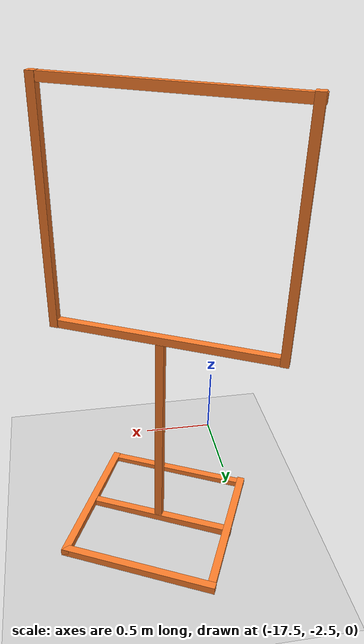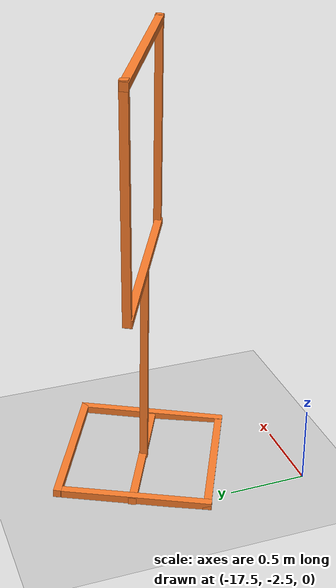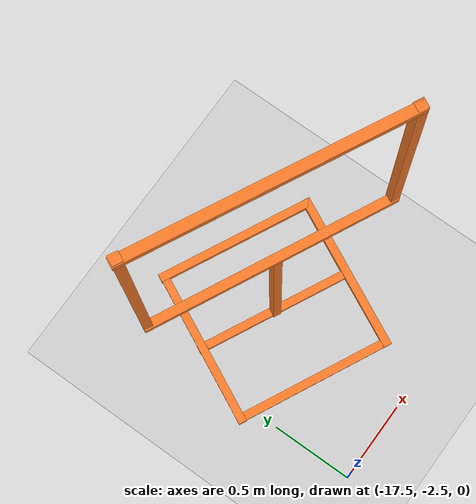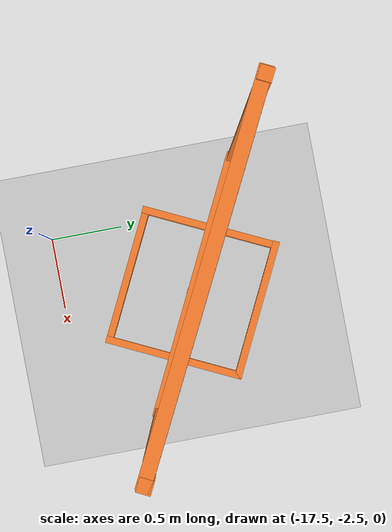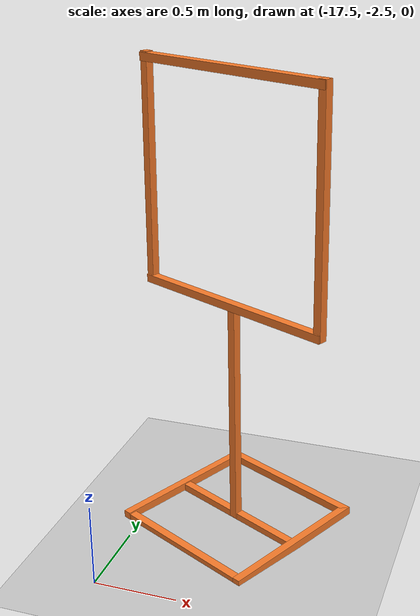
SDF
<sdf version="1.6">
 <world name="default">
  <model name="ground_plane">
   <static>1</static>
   <link name="link">
    <collision name="collision">
     <geometry><plane><normal>0 0 1</normal><size>100 100</size></plane></geometry>
     <surface><friction><ode><mu>100</mu><mu2>50</mu2></ode></friction></surface>
    </collision>
    <visual name="visual">
     <cast_shadows>0</cast_shadows>
     <geometry><plane><normal>0 0 1</normal><size>100 100</size></plane></geometry>
     <material>
      <script><uri>file://media/materials/scripts/gazebo.material</uri><name>Gazebo/Grey</name></script>
     </material>
    </visual>
    <velocity_decay><linear>0</linear><angular>0</angular></velocity_decay>
   </link>
  </model>
  <model name="closed_gate_clone_clone_clone_0">
   <link name="link">
    <inertial>
     <mass>1</mass>
     <inertia>
      <ixx>0.166667</ixx>
      <ixy>0</ixy>
      <ixz>0</ixz>
      <iyy>0.166667</iyy>
      <iyz>0</iyz>
      <izz>0.166667</izz>
     </inertia>
    </inertial>
    <pose>0.404756 -0.715724 1.41623 0 -0 0</pose>
    <visual name="visual">
     <geometry><box><size>0.05 0.05 1.4</size></box></geometry>
     <material>
      <script><name>Gazebo/Grey</name><uri>file://media/materials/scripts/gazebo.material</uri></script>
      <shader type="vertex"><normal_map>__default__</normal_map></shader>
      <ambient>0.976 0.484 0.164 1</ambient>
      <diffuse>0.976 0.484 0.164 1</diffuse>
      <specular>0.01 0.01 0.01 1</specular>
      <emissive>0 0 0 1</emissive>
     </material>
    </visual>
    <collision name="collision">
     <geometry><box><size>0.05 0.05 1.4</size></box></geometry>
     <surface>
      <friction>
       <ode><mu>1</mu><mu2>1</mu2><fdir1>0 0 0</fdir1><slip1>0</slip1><slip2>0</slip2></ode>
       <torsional>
        <coefficient>1</coefficient>
        <patch_radius>0</patch_radius>
        <surface_radius>0</surface_radius>
        <use_patch_radius>1</use_patch_radius>
        <ode><slip>0</slip></ode>
       </torsional>
      </friction>
      <bounce><restitution_coefficient>0</restitution_coefficient><threshold>1e+06</threshold></bounce>
      <contact>
       <collide_without_contact>0</collide_without_contact>
       <collide_without_contact_bitmask>1</collide_without_contact_bitmask>
       <collide_bitmask>1</collide_bitmask>
       <ode>
        <soft_cfm>0</soft_cfm>
        <soft_erp>0.2</soft_erp>
        <kp>1e+13</kp>
        <kd>1</kd>
        <max_vel>0.01</max_vel>
        <min_depth>0</min_depth>
       </ode>
       <bullet>
        <split_impulse>1</split_impulse>
        <split_impulse_penetration_threshold>-0.01</split_impulse_penetration_threshold>
        <soft_cfm>0</soft_cfm>
        <soft_erp>0.2</soft_erp>
        <kp>1e+13</kp>
        <kd>1</kd>
       </bullet>
      </contact>
     </surface>
    </collision>
   </link>
   <link name="link_clone_0_clone_0">
    <inertial>
     <mass>1</mass>
     <inertia>
      <ixx>0.166667</ixx>
      <ixy>0</ixy>
      <ixz>0</ixz>
      <iyy>0.166667</iyy>
      <iyz>0</iyz>
      <izz>0.166667</izz>
     </inertia>
    </inertial>
    <pose>1.11096 -0.693594 -0.667388 -1.57955 0.044957 -1.56415</pose>
    <visual name="visual">
     <geometry><box><size>0.05 0.05 1</size></box></geometry>
     <material>
      <script><name>Gazebo/Grey</name><uri>file://media/materials/scripts/gazebo.material</uri></script>
      <shader type="vertex"><normal_map>__default__</normal_map></shader>
      <ambient>0.976 0.484 0.164 1</ambient>
      <diffuse>0.976 0.484 0.164 1</diffuse>
      <specular>0.01 0.01 0.01 1</specular>
      <emissive>0 0 0 1</emissive>
     </material>
    </visual>
    <collision name="collision">
     <geometry><box><size>0.05 0.05 1</size></box></geometry>
     <surface>
      <friction>
       <ode><mu>1</mu><mu2>1</mu2><fdir1>0 0 0</fdir1><slip1>0</slip1><slip2>0</slip2></ode>
       <torsional>
        <coefficient>1</coefficient>
        <patch_radius>0</patch_radius>
        <surface_radius>0</surface_radius>
        <use_patch_radius>1</use_patch_radius>
        <ode><slip>0</slip></ode>
       </torsional>
      </friction>
      <bounce><restitution_coefficient>0</restitution_coefficient><threshold>1e+06</threshold></bounce>
      <contact>
       <collide_without_contact>0</collide_without_contact>
       <collide_without_contact_bitmask>1</collide_without_contact_bitmask>
       <collide_bitmask>1</collide_bitmask>
       <ode>
        <soft_cfm>0</soft_cfm>
        <soft_erp>0.2</soft_erp>
        <kp>1e+13</kp>
        <kd>1</kd>
        <max_vel>0.01</max_vel>
        <min_depth>0</min_depth>
       </ode>
       <bullet>
        <split_impulse>1</split_impulse>
        <split_impulse_penetration_threshold>-0.01</split_impulse_penetration_threshold>
        <soft_cfm>0</soft_cfm>
        <soft_erp>0.2</soft_erp>
        <kp>1e+13</kp>
        <kd>1</kd>
       </bullet>
      </contact>
     </surface>
    </collision>
   </link>
   <link name="link_clone_0_clone_0_clone">
    <inertial>
     <mass>1</mass>
     <inertia>
      <ixx>0.166667</ixx>
      <ixy>0</ixy>
      <ixz>0</ixz>
      <iyy>0.166667</iyy>
      <iyz>0</iyz>
      <izz>0.166667</izz>
     </inertia>
    </inertial>
    <pose>0.637485 -0.695511 -0.656732 -1.55146 -0.019345 0.017432</pose>
    <visual name="visual">
     <geometry><box><size>0.05 0.05 1</size></box></geometry>
     <material>
      <script><name>Gazebo/Grey</name><uri>file://media/materials/scripts/gazebo.material</uri></script>
      <shader type="vertex"><normal_map>__default__</normal_map></shader>
      <ambient>0.976 0.484 0.164 1</ambient>
      <diffuse>0.976 0.484 0.164 1</diffuse>
      <specular>0.01 0.01 0.01 1</specular>
      <emissive>0 0 0 1</emissive>
     </material>
    </visual>
    <collision name="collision">
     <geometry><box><size>0.05 0.05 1</size></box></geometry>
     <surface>
      <friction>
       <ode><mu>1</mu><mu2>1</mu2><fdir1>0 0 0</fdir1><slip1>0</slip1><slip2>0</slip2></ode>
       <torsional>
        <coefficient>1</coefficient>
        <patch_radius>0</patch_radius>
        <surface_radius>0</surface_radius>
        <use_patch_radius>1</use_patch_radius>
        <ode><slip>0</slip></ode>
       </torsional>
      </friction>
      <bounce><restitution_coefficient>0</restitution_coefficient><threshold>1e+06</threshold></bounce>
      <contact>
       <collide_without_contact>0</collide_without_contact>
       <collide_without_contact_bitmask>1</collide_without_contact_bitmask>
       <collide_bitmask>1</collide_bitmask>
       <ode>
        <soft_cfm>0</soft_cfm>
        <soft_erp>0.2</soft_erp>
        <kp>1e+13</kp>
        <kd>1</kd>
        <max_vel>0.01</max_vel>
        <min_depth>0</min_depth>
       </ode>
       <bullet>
        <split_impulse>1</split_impulse>
        <split_impulse_penetration_threshold>-0.01</split_impulse_penetration_threshold>
        <soft_cfm>0</soft_cfm>
        <soft_erp>0.2</soft_erp>
        <kp>1e+13</kp>
        <kd>1</kd>
       </bullet>
      </contact>
     </surface>
    </collision>
   </link>
   <link name="link_clone_0_clone_0_clone_0">
    <inertial>
     <mass>1</mass>
     <inertia>
      <ixx>0.166667</ixx>
      <ixy>0</ixy>
      <ixz>0</ixz>
      <iyy>0.166667</iyy>
      <iyz>0</iyz>
      <izz>0.166667</izz>
     </inertia>
    </inertial>
    <pose>1.12077 -1.16283 -0.677317 -1.57839 0.053451 -1.56287</pose>
    <visual name="visual">
     <geometry><box><size>0.05 0.05 1</size></box></geometry>
     <material>
      <script><name>Gazebo/Grey</name><uri>file://media/materials/scripts/gazebo.material</uri></script>
      <shader type="vertex"><normal_map>__default__</normal_map></shader>
      <ambient>0.976 0.484 0.164 1</ambient>
      <diffuse>0.976 0.484 0.164 1</diffuse>
      <specular>0.01 0.01 0.01 1</specular>
      <emissive>0 0 0 1</emissive>
     </material>
    </visual>
    <collision name="collision">
     <geometry><box><size>0.05 0.05 1</size></box></geometry>
     <surface>
      <friction>
       <ode><mu>1</mu><mu2>1</mu2><fdir1>0 0 0</fdir1><slip1>0</slip1><slip2>0</slip2></ode>
       <torsional>
        <coefficient>1</coefficient>
        <patch_radius>0</patch_radius>
        <surface_radius>0</surface_radius>
        <use_patch_radius>1</use_patch_radius>
        <ode><slip>0</slip></ode>
       </torsional>
      </friction>
      <bounce><restitution_coefficient>0</restitution_coefficient><threshold>1e+06</threshold></bounce>
      <contact>
       <collide_without_contact>0</collide_without_contact>
       <collide_without_contact_bitmask>1</collide_without_contact_bitmask>
       <collide_bitmask>1</collide_bitmask>
       <ode>
        <soft_cfm>0</soft_cfm>
        <soft_erp>0.2</soft_erp>
        <kp>1e+13</kp>
        <kd>1</kd>
        <max_vel>0.01</max_vel>
        <min_depth>0</min_depth>
       </ode>
       <bullet>
        <split_impulse>1</split_impulse>
        <split_impulse_penetration_threshold>-0.01</split_impulse_penetration_threshold>
        <soft_cfm>0</soft_cfm>
        <soft_erp>0.2</soft_erp>
        <kp>1e+13</kp>
        <kd>1</kd>
       </bullet>
      </contact>
     </surface>
    </collision>
   </link>
   <link name="link_clone_0_clone_0_clone_2">
    <inertial>
     <mass>1</mass>
     <inertia>
      <ixx>0.166667</ixx>
      <ixy>0</ixy>
      <ixz>0</ixz>
      <iyy>0.166667</iyy>
      <iyz>0</iyz>
      <izz>0.166667</izz>
     </inertia>
    </inertial>
    <pose>1.10088 -0.214462 -0.645898 -1.57451 0.053447 -1.56287</pose>
    <visual name="visual">
     <geometry><box><size>0.05 0.05 1</size></box></geometry>
     <material>
      <script><name>Gazebo/Grey</name><uri>file://media/materials/scripts/gazebo.material</uri></script>
      <shader type="vertex"><normal_map>__default__</normal_map></shader>
      <ambient>0.976 0.484 0.164 1</ambient>
      <diffuse>0.976 0.484 0.164 1</diffuse>
      <specular>0.01 0.01 0.01 1</specular>
      <emissive>0 0 0 1</emissive>
     </material>
    </visual>
    <collision name="collision">
     <geometry><box><size>0.05 0.05 1</size></box></geometry>
     <surface>
      <friction>
       <ode><mu>1</mu><mu2>1</mu2><fdir1>0 0 0</fdir1><slip1>0</slip1><slip2>0</slip2></ode>
       <torsional>
        <coefficient>1</coefficient>
        <patch_radius>0</patch_radius>
        <surface_radius>0</surface_radius>
        <use_patch_radius>1</use_patch_radius>
        <ode><slip>0</slip></ode>
       </torsional>
      </friction>
      <bounce><restitution_coefficient>0</restitution_coefficient><threshold>1e+06</threshold></bounce>
      <contact>
       <collide_without_contact>0</collide_without_contact>
       <collide_without_contact_bitmask>1</collide_without_contact_bitmask>
       <collide_bitmask>1</collide_bitmask>
       <ode>
        <soft_cfm>0</soft_cfm>
        <soft_erp>0.2</soft_erp>
        <kp>1e+13</kp>
        <kd>1</kd>
        <max_vel>0.01</max_vel>
        <min_depth>0</min_depth>
       </ode>
       <bullet>
        <split_impulse>1</split_impulse>
        <split_impulse_penetration_threshold>-0.01</split_impulse_penetration_threshold>
        <soft_cfm>0</soft_cfm>
        <soft_erp>0.2</soft_erp>
        <kp>1e+13</kp>
        <kd>1</kd>
       </bullet>
      </contact>
     </surface>
    </collision>
   </link>
   <link name="link_clone_0_clone_0_clone_clone">
    <inertial>
     <mass>1</mass>
     <inertia>
      <ixx>0.166667</ixx>
      <ixy>0</ixy>
      <ixz>0</ixz>
      <iyy>0.166667</iyy>
      <iyz>0</iyz>
      <izz>0.166667</izz>
     </inertia>
    </inertial>
    <pose>1.59453 -0.684923 -0.663241 -1.53838 -0.023075 0.018345</pose>
    <visual name="visual">
     <geometry><box><size>0.05 0.05 1</size></box></geometry>
     <material>
      <script><name>Gazebo/Grey</name><uri>file://media/materials/scripts/gazebo.material</uri></script>
      <shader type="vertex"><normal_map>__default__</normal_map></shader>
      <ambient>0.976 0.484 0.164 1</ambient>
      <diffuse>0.976 0.484 0.164 1</diffuse>
      <specular>0.01 0.01 0.01 1</specular>
      <emissive>0 0 0 1</emissive>
     </material>
    </visual>
    <collision name="collision">
     <geometry><box><size>0.05 0.05 1</size></box></geometry>
     <surface>
      <friction>
       <ode><mu>1</mu><mu2>1</mu2><fdir1>0 0 0</fdir1><slip1>0</slip1><slip2>0</slip2></ode>
       <torsional>
        <coefficient>1</coefficient>
        <patch_radius>0</patch_radius>
        <surface_radius>0</surface_radius>
        <use_patch_radius>1</use_patch_radius>
        <ode><slip>0</slip></ode>
       </torsional>
      </friction>
      <bounce><restitution_coefficient>0</restitution_coefficient><threshold>1e+06</threshold></bounce>
      <contact>
       <collide_without_contact>0</collide_without_contact>
       <collide_without_contact_bitmask>1</collide_without_contact_bitmask>
       <collide_bitmask>1</collide_bitmask>
       <ode>
        <soft_cfm>0</soft_cfm>
        <soft_erp>0.2</soft_erp>
        <kp>1e+13</kp>
        <kd>1</kd>
        <max_vel>0.01</max_vel>
        <min_depth>0</min_depth>
       </ode>
       <bullet>
        <split_impulse>1</split_impulse>
        <split_impulse_penetration_threshold>-0.01</split_impulse_penetration_threshold>
        <soft_cfm>0</soft_cfm>
        <soft_erp>0.2</soft_erp>
        <kp>1e+13</kp>
        <kd>1</kd>
       </bullet>
      </contact>
     </surface>
    </collision>
   </link>
   <link name="link_clone_0_clone_1">
    <inertial>
     <mass>1</mass>
     <inertia>
      <ixx>0.166667</ixx>
      <ixy>0</ixy>
      <ixz>0</ixz>
      <iyy>0.166667</iyy>
      <iyz>0</iyz>
      <izz>0.166667</izz>
     </inertia>
    </inertial>
    <pose>1.08198 -0.717602 0.744079 -1.56201 0.04483 -1.56244</pose>
    <visual name="visual">
     <geometry><box><size>0.05 0.05 1.4</size></box></geometry>
     <material>
      <script><name>Gazebo/Grey</name><uri>file://media/materials/scripts/gazebo.material</uri></script>
      <shader type="vertex"><normal_map>__default__</normal_map></shader>
      <ambient>0.976 0.484 0.164 1</ambient>
      <diffuse>0.976 0.484 0.164 1</diffuse>
      <specular>0.01 0.01 0.01 1</specular>
      <emissive>0 0 0 1</emissive>
     </material>
    </visual>
    <collision name="collision">
     <geometry><box><size>0.05 0.05 1.4</size></box></geometry>
     <surface>
      <friction>
       <ode><mu>1</mu><mu2>1</mu2><fdir1>0 0 0</fdir1><slip1>0</slip1><slip2>0</slip2></ode>
       <torsional>
        <coefficient>1</coefficient>
        <patch_radius>0</patch_radius>
        <surface_radius>0</surface_radius>
        <use_patch_radius>1</use_patch_radius>
        <ode><slip>0</slip></ode>
       </torsional>
      </friction>
      <bounce><restitution_coefficient>0</restitution_coefficient><threshold>1e+06</threshold></bounce>
      <contact>
       <collide_without_contact>0</collide_without_contact>
       <collide_without_contact_bitmask>1</collide_without_contact_bitmask>
       <collide_bitmask>1</collide_bitmask>
       <ode>
        <soft_cfm>0</soft_cfm>
        <soft_erp>0.2</soft_erp>
        <kp>1e+13</kp>
        <kd>1</kd>
        <max_vel>0.01</max_vel>
        <min_depth>0</min_depth>
       </ode>
       <bullet>
        <split_impulse>1</split_impulse>
        <split_impulse_penetration_threshold>-0.01</split_impulse_penetration_threshold>
        <soft_cfm>0</soft_cfm>
        <soft_erp>0.2</soft_erp>
        <kp>1e+13</kp>
        <kd>1</kd>
       </bullet>
      </contact>
     </surface>
    </collision>
   </link>
   <link name="link_clone_0_clone_1_clone">
    <inertial>
     <mass>1</mass>
     <inertia>
      <ixx>0.166667</ixx>
      <ixy>0</ixy>
      <ixz>0</ixz>
      <iyy>0.166667</iyy>
      <iyz>0</iyz>
      <izz>0.166667</izz>
     </inertia>
    </inertial>
    <pose>1.07529 -0.719849 2.09328 -1.55888 0.053444 -1.57124</pose>
    <visual name="visual">
     <geometry><box><size>0.05 0.05 1.4</size></box></geometry>
     <material>
      <script><name>Gazebo/Grey</name><uri>file://media/materials/scripts/gazebo.material</uri></script>
      <shader type="vertex"><normal_map>__default__</normal_map></shader>
      <ambient>0.976 0.484 0.164 1</ambient>
      <diffuse>0.976 0.484 0.164 1</diffuse>
      <specular>0.01 0.01 0.01 1</specular>
      <emissive>0 0 0 1</emissive>
     </material>
    </visual>
    <collision name="collision">
     <geometry><box><size>0.05 0.05 1.4</size></box></geometry>
     <surface>
      <friction>
       <ode><mu>1</mu><mu2>1</mu2><fdir1>0 0 0</fdir1><slip1>0</slip1><slip2>0</slip2></ode>
       <torsional>
        <coefficient>1</coefficient>
        <patch_radius>0</patch_radius>
        <surface_radius>0</surface_radius>
        <use_patch_radius>1</use_patch_radius>
        <ode><slip>0</slip></ode>
       </torsional>
      </friction>
      <bounce><restitution_coefficient>0</restitution_coefficient><threshold>1e+06</threshold></bounce>
      <contact>
       <collide_without_contact>0</collide_without_contact>
       <collide_without_contact_bitmask>1</collide_without_contact_bitmask>
       <collide_bitmask>1</collide_bitmask>
       <ode>
        <soft_cfm>0</soft_cfm>
        <soft_erp>0.2</soft_erp>
        <kp>1e+13</kp>
        <kd>1</kd>
        <max_vel>0.01</max_vel>
        <min_depth>0</min_depth>
       </ode>
       <bullet>
        <split_impulse>1</split_impulse>
        <split_impulse_penetration_threshold>-0.01</split_impulse_penetration_threshold>
        <soft_cfm>0</soft_cfm>
        <soft_erp>0.2</soft_erp>
        <kp>1e+13</kp>
        <kd>1</kd>
       </bullet>
      </contact>
     </surface>
    </collision>
   </link>
   <link name="link_clone_1">
    <inertial>
     <mass>1</mass>
     <inertia>
      <ixx>0.166667</ixx>
      <ixy>0</ixy>
      <ixz>0</ixz>
      <iyy>0.166667</iyy>
      <iyz>0</iyz>
      <izz>0.166667</izz>
     </inertia>
    </inertial>
    <pose>1.11167 -0.706269 0.02254 0.008527 -0.003582 0.001077</pose>
    <visual name="visual">
     <geometry><box><size>0.05 0.05 1.4</size></box></geometry>
     <material>
      <script><name>Gazebo/Grey</name><uri>file://media/materials/scripts/gazebo.material</uri></script>
      <shader type="vertex"><normal_map>__default__</normal_map></shader>
      <ambient>0.976 0.484 0.164 1</ambient>
      <diffuse>0.976 0.484 0.164 1</diffuse>
      <specular>0.01 0.01 0.01 1</specular>
      <emissive>0 0 0 1</emissive>
     </material>
    </visual>
    <collision name="collision">
     <geometry><box><size>0.05 0.05 1.4</size></box></geometry>
     <surface>
      <friction>
       <ode><mu>1</mu><mu2>1</mu2><fdir1>0 0 0</fdir1><slip1>0</slip1><slip2>0</slip2></ode>
       <torsional>
        <coefficient>1</coefficient>
        <patch_radius>0</patch_radius>
        <surface_radius>0</surface_radius>
        <use_patch_radius>1</use_patch_radius>
        <ode><slip>0</slip></ode>
       </torsional>
      </friction>
      <bounce><restitution_coefficient>0</restitution_coefficient><threshold>1e+06</threshold></bounce>
      <contact>
       <collide_without_contact>0</collide_without_contact>
       <collide_without_contact_bitmask>1</collide_without_contact_bitmask>
       <collide_bitmask>1</collide_bitmask>
       <ode>
        <soft_cfm>0</soft_cfm>
        <soft_erp>0.2</soft_erp>
        <kp>1e+13</kp>
        <kd>1</kd>
        <max_vel>0.01</max_vel>
        <min_depth>0</min_depth>
       </ode>
       <bullet>
        <split_impulse>1</split_impulse>
        <split_impulse_penetration_threshold>-0.01</split_impulse_penetration_threshold>
        <soft_cfm>0</soft_cfm>
        <soft_erp>0.2</soft_erp>
        <kp>1e+13</kp>
        <kd>1</kd>
       </bullet>
      </contact>
     </surface>
    </collision>
   </link>
   <link name="link_clone_7">
    <inertial>
     <mass>1</mass>
     <inertia>
      <ixx>0.166667</ixx>
      <ixy>0</ixy>
      <ixz>0</ixz>
      <iyy>0.166667</iyy>
      <iyz>0</iyz>
      <izz>0.166667</izz>
     </inertia>
    </inertial>
    <pose>1.75876 -0.711707 1.42733 0.008527 -0.003582 0.001077</pose>
    <visual name="visual">
     <geometry><box><size>0.05 0.05 1.4</size></box></geometry>
     <material>
      <script><name>Gazebo/Grey</name><uri>file://media/materials/scripts/gazebo.material</uri></script>
      <shader type="vertex"><normal_map>__default__</normal_map></shader>
      <ambient>0.976 0.484 0.164 1</ambient>
      <diffuse>0.976 0.484 0.164 1</diffuse>
      <specular>0.01 0.01 0.01 1</specular>
      <emissive>0 0 0 1</emissive>
     </material>
    </visual>
    <collision name="collision">
     <geometry><box><size>0.05 0.05 1.4</size></box></geometry>
     <surface>
      <friction>
       <ode><mu>1</mu><mu2>1</mu2><fdir1>0 0 0</fdir1><slip1>0</slip1><slip2>0</slip2></ode>
       <torsional>
        <coefficient>1</coefficient>
        <patch_radius>0</patch_radius>
        <surface_radius>0</surface_radius>
        <use_patch_radius>1</use_patch_radius>
        <ode><slip>0</slip></ode>
       </torsional>
      </friction>
      <bounce><restitution_coefficient>0</restitution_coefficient><threshold>1e+06</threshold></bounce>
      <contact>
       <collide_without_contact>0</collide_without_contact>
       <collide_without_contact_bitmask>1</collide_without_contact_bitmask>
       <collide_bitmask>1</collide_bitmask>
       <ode>
        <soft_cfm>0</soft_cfm>
        <soft_erp>0.2</soft_erp>
        <kp>1e+13</kp>
        <kd>1</kd>
        <max_vel>0.01</max_vel>
        <min_depth>0</min_depth>
       </ode>
       <bullet>
        <split_impulse>1</split_impulse>
        <split_impulse_penetration_threshold>-0.01</split_impulse_penetration_threshold>
        <soft_cfm>0</soft_cfm>
        <soft_erp>0.2</soft_erp>
        <kp>1e+13</kp>
        <kd>1</kd>
       </bullet>
      </contact>
     </surface>
    </collision>
   </link>
   <static>1</static>
   <pose>-17.6262 -0.469268 0.68342 0 0 -0.470174</pose>
  </model>
 </world>
</sdf>
